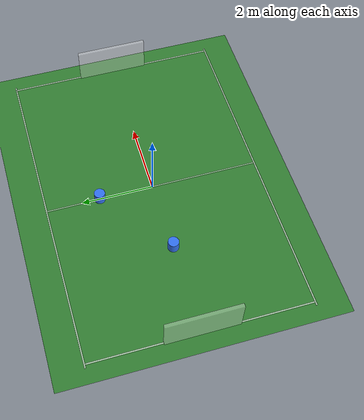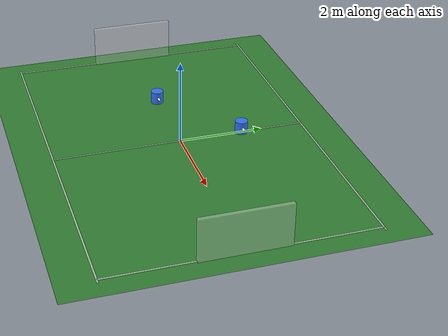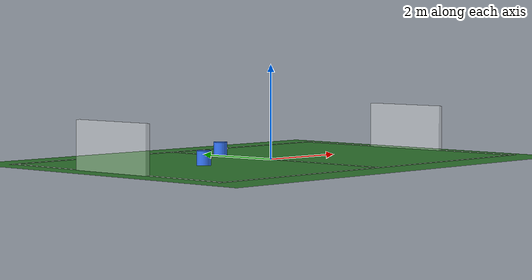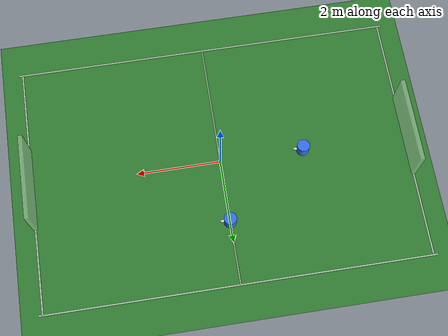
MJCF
<mujoco model="soccer_minimal">
  <!-- 最小 3D 传球场景: 2 圆柱机器人 + 1 足球 -->
  <option timestep="0.002" gravity="0 0 -9.81"/>

  <visual>
    <headlight diffuse="0.85 0.85 0.85" ambient="0.3 0.3 0.3"/>
    <rgba haze="0.15 0.25 0.35 1"/>
  </visual>

  <asset>
    <texture type="skybox" builtin="gradient"
             rgb1="0.35 0.55 0.75" rgb2="0.05 0.05 0.15" width="512" height="512"/>
    <texture name="texplane" type="2d" builtin="checker"
             rgb1="0.25 0.55 0.25" rgb2="0.15 0.45 0.15" width="512" height="512"/>
    <material name="matplane" texture="texplane" texrepeat="6 4" reflectance="0.1"/>
    <material name="matgoal" rgba="1 1 1 0.35"/>
  </asset>

  <worldbody>
    <light pos="0 0 8" dir="0 0 -1" diffuse="1 1 1" castshadow="true"/>
    <light pos="4 3 6" dir="-0.5 -0.3 -1" diffuse="0.4 0.4 0.4"/>

    <!-- 9m x 6m 场地 (half-size 4.5 x 3) -->
    <geom name="floor" type="plane" size="5 4 0.1" material="matplane"/>

    <!-- 边线 (visual) -->
    <geom type="box" pos="0 3 0.005" size="4.6 0.02 0.005" rgba="1 1 1 0.6" contype="0" conaffinity="0"/>
    <geom type="box" pos="0 -3 0.005" size="4.6 0.02 0.005" rgba="1 1 1 0.6" contype="0" conaffinity="0"/>
    <geom type="box" pos="4.5 0 0.005" size="0.02 3 0.005" rgba="1 1 1 0.6" contype="0" conaffinity="0"/>
    <geom type="box" pos="-4.5 0 0.005" size="0.02 3 0.005" rgba="1 1 1 0.6" contype="0" conaffinity="0"/>
    <!-- 中线 -->
    <geom type="box" pos="0 0 0.005" size="0.02 3 0.005" rgba="1 1 1 0.4" contype="0" conaffinity="0"/>

    <!-- 球门示意 -->
    <geom name="goal_left" type="box" pos="-4.5 0 0.5" size="0.05 1 0.5" material="matgoal" contype="0" conaffinity="0"/>
    <geom name="goal_right" type="box" pos="4.5 0 0.5" size="0.05 1 0.5" material="matgoal" contype="0" conaffinity="0"/>

    <!-- 足球 (freejoint, 位置由 Python 同步) -->
    <body name="ball" pos="-2 0 0.05">
      <freejoint name="ball_joint"/>
      <geom name="ball_geom" type="sphere" size="0.05"
            rgba="1 1 1 1" mass="0.045" friction="0.5 0.5 0.001"/>
    </body>

    <!-- 机器人 0 / 1: mocap 圆柱, 由 Python 同步 -->
    <body name="robot_0" mocap="true" pos="-2 0 0.15">
      <geom type="cylinder" size="0.15 0.15" rgba="0.2 0.45 0.95 1" contype="0" conaffinity="0"/>
      <!-- 朝向指示 -->
      <geom type="capsule" fromto="0 0 0 0.2 0 0" size="0.03" rgba="1 1 1 0.9" contype="0" conaffinity="0"/>
    </body>

    <body name="robot_1" mocap="true" pos="0 1.5 0.15">
      <geom type="cylinder" size="0.15 0.15" rgba="0.2 0.45 0.95 1" contype="0" conaffinity="0"/>
      <geom type="capsule" fromto="0 0 0 0.2 0 0" size="0.03" rgba="1 1 1 0.9" contype="0" conaffinity="0"/>
    </body>
  </worldbody>
</mujoco>
